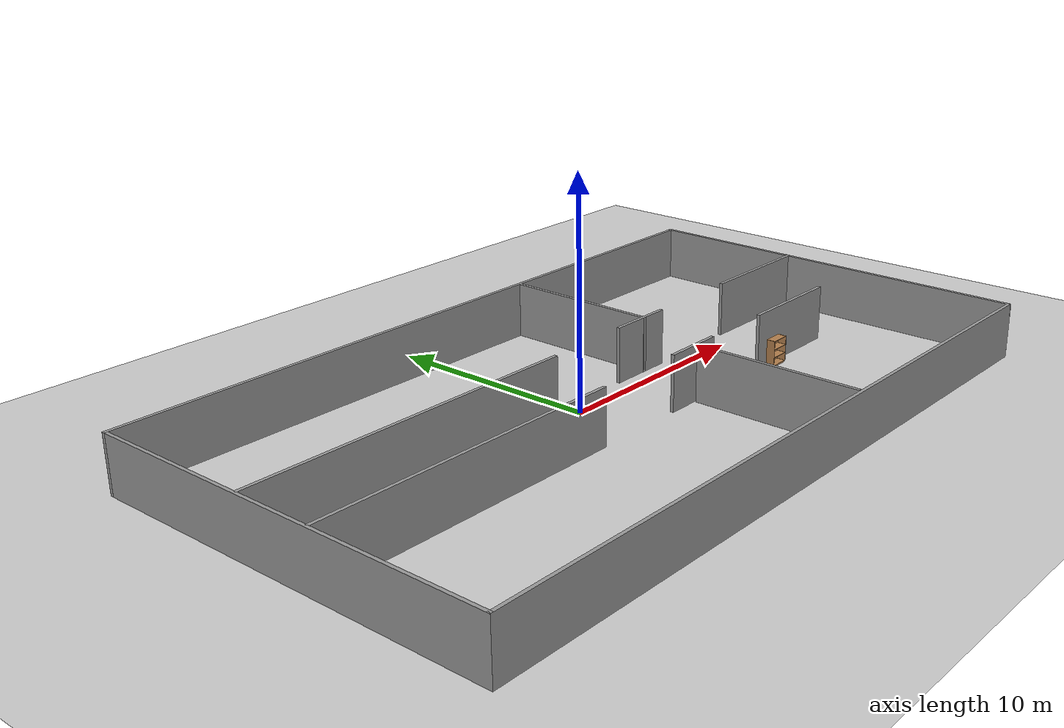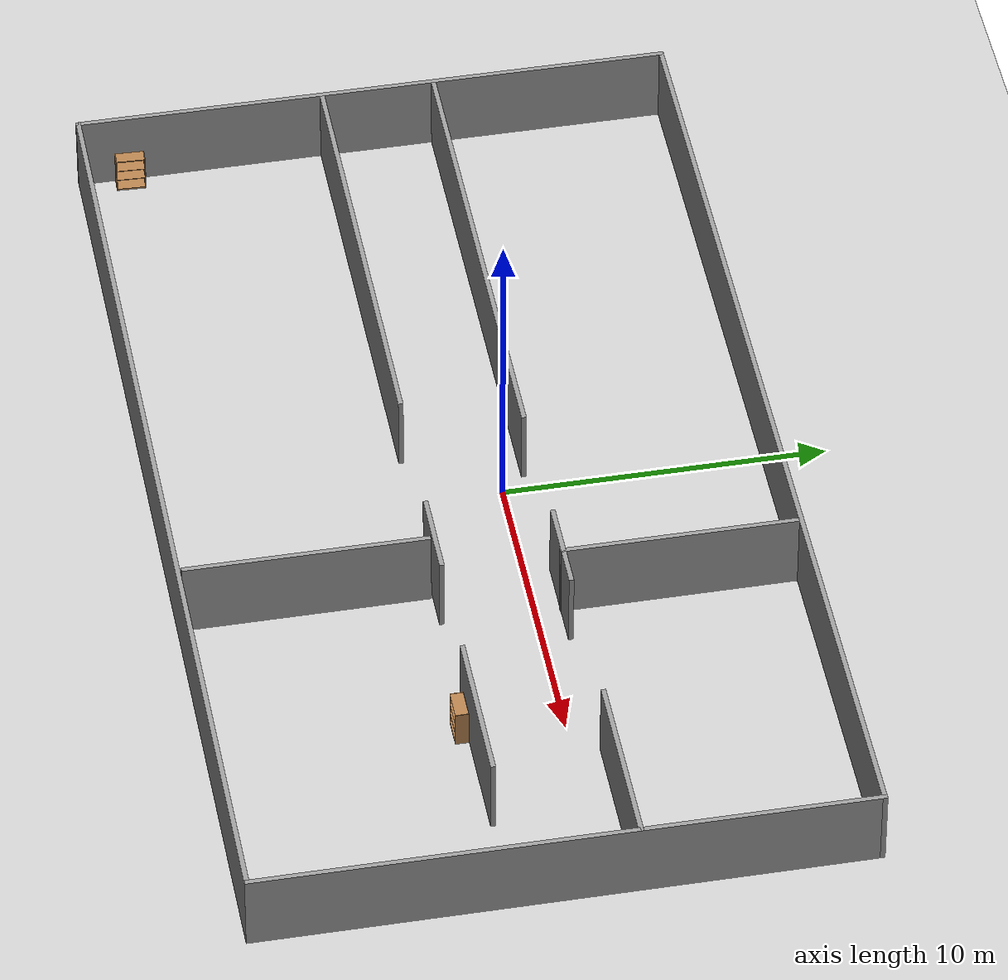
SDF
<sdf version="1.6">
 <world name="default">
  <light name="sun" type="directional">
   <pose>0 0 10 0 -0 0</pose>
   <diffuse>0.8 0.8 0.8 1</diffuse>
   <specular>0.1 0.1 0.1 1</specular>
   <attenuation>
    <range>1000</range>
    <constant>0.9</constant>
    <linear>0.01</linear>
    <quadratic>0.001</quadratic>
   </attenuation>
   <direction>-0.5 0.5 -1</direction>
  </light>
  <model name="ground_plane">
   <static>1</static>
   <link name="link">
    <collision name="collision">
     <geometry><plane><normal>0 0 1</normal><size>100 100</size></plane></geometry>
     <surface><friction><ode><mu>100</mu><mu2>50</mu2></ode></friction></surface>
    </collision>
    <visual name="visual">
     <cast_shadows>0</cast_shadows>
     <geometry><plane><normal>0 0 1</normal><size>100 100</size></plane></geometry>
     <material>
      <script><uri>file://media/materials/scripts/gazebo.material</uri><name>Gazebo/Grey</name></script>
     </material>
    </visual>
   </link>
  </model>
  <gravity>0 0 -9.8</gravity>
  <magnetic_field>6e-06 2.3e-05 -4.2e-05</magnetic_field>
  <atmosphere type="adiabatic"/>
  <physics name="default_physics" default="0" type="ode">
   <max_step_size>0.001</max_step_size>
   <real_time_factor>1</real_time_factor>
   <real_time_update_rate>1000</real_time_update_rate>
  </physics>
  <scene><ambient>0.4 0.4 0.4 1</ambient><background>0.7 0.7 0.7 1</background><shadows>1</shadows></scene>
  <spherical_coordinates>
   <surface_model>EARTH_WGS84</surface_model>
   <latitude_deg>0</latitude_deg>
   <longitude_deg>0</longitude_deg>
   <elevation>0</elevation>
   <heading_deg>0</heading_deg>
  </spherical_coordinates>
  <model name="lima-mars">
   <pose>0.317672 -1.23134 0 0 0 -0.002471</pose>
   <link name="Wall_10">
    <collision name="Wall_10_Collision">
     <geometry><box><size>14.25 0.15 2.5</size></box></geometry>
     <pose>0 0 1.25 0 -0 0</pose>
    </collision>
    <visual name="Wall_10_Visual">
     <pose>0 0 1.25 0 -0 0</pose>
     <geometry><box><size>14.25 0.15 2.5</size></box></geometry>
     <material>
      <script><uri>file://media/materials/scripts/gazebo.material</uri><name>Gazebo/Grey</name></script>
      <ambient>1 1 1 1</ambient>
     </material>
    </visual>
    <pose>-9.26946 -1.57024 0 0 -0 0</pose>
   </link>
   <link name="Wall_12">
    <collision name="Wall_12_Collision">
     <geometry><box><size>2.75 0.15 2.5</size></box></geometry>
     <pose>0 0 1.25 0 -0 0</pose>
    </collision>
    <visual name="Wall_12_Visual">
     <pose>0 0 1.25 0 -0 0</pose>
     <geometry><box><size>2.75 0.15 2.5</size></box></geometry>
     <material>
      <script><uri>file://media/materials/scripts/gazebo.material</uri><name>Gazebo/Grey</name></script>
      <ambient>1 1 1 1</ambient>
     </material>
    </visual>
    <pose>3.48457 -1.57024 0 0 -0 0</pose>
   </link>
   <link name="Wall_14">
    <collision name="Wall_14_Collision">
     <geometry><box><size>7.5 0.15 2.5</size></box></geometry>
     <pose>0 0 1.25 0 -0 0</pose>
    </collision>
    <visual name="Wall_14_Visual">
     <pose>0 0 1.25 0 -0 0</pose>
     <geometry><box><size>7.5 0.15 2.5</size></box></geometry>
     <material>
      <script><uri>file://media/materials/scripts/gazebo.material</uri><name>Gazebo/Grey</name></script>
      <ambient>1 1 1 1</ambient>
     </material>
    </visual>
    <pose>3.65729 -5.43811 0 0 0 -1.5708</pose>
   </link>
   <link name="Wall_16">
    <collision name="Wall_16_Collision">
     <geometry><box><size>15.5 0.15 2.5</size></box></geometry>
     <pose>0 0 1.25 0 -0 0</pose>
    </collision>
    <visual name="Wall_16_Visual">
     <pose>0 0 1.25 0 -0 0</pose>
     <geometry><box><size>15.5 0.15 2.5</size></box></geometry>
     <material>
      <script><uri>file://media/materials/scripts/gazebo.material</uri><name>Gazebo/Grey</name></script>
      <ambient>1 1 1 1</ambient>
     </material>
    </visual>
    <pose>-8.64446 1.98282 0 0 -0 0</pose>
   </link>
   <link name="Wall_18">
    <collision name="Wall_18_Collision">
     <geometry><box><size>3 0.15 2.5</size></box></geometry>
     <pose>0 0 1.25 0 -0 0</pose>
    </collision>
    <visual name="Wall_18_Visual">
     <pose>0 0 1.25 0 -0 0</pose>
     <geometry><box><size>3 0.15 2.5</size></box></geometry>
     <material>
      <script><uri>file://media/materials/scripts/gazebo.material</uri><name>Gazebo/Grey</name></script>
      <ambient>1 1 1 1</ambient>
     </material>
    </visual>
    <pose>4.66493 2.08835 0 0 -0 0</pose>
   </link>
   <link name="Wall_21">
    <collision name="Wall_21_Collision">
     <geometry><box><size>7.25 0.15 2.5</size></box></geometry>
     <pose>0 0 1.25 0 -0 0</pose>
    </collision>
    <visual name="Wall_21_Visual">
     <pose>0 0 1.25 0 -0 0</pose>
     <geometry><box><size>7.25 0.15 2.5</size></box></geometry>
     <material>
      <script><uri>file://media/materials/scripts/gazebo.material</uri><name>Gazebo/Grey</name></script>
      <ambient>1 1 1 1</ambient>
     </material>
    </visual>
    <pose>4.8779 5.61925 0 0 -0 1.5708</pose>
   </link>
   <link name="Wall_23">
    <collision name="Wall_23_Collision">
     <geometry><box><size>5 0.15 2.5</size></box></geometry>
     <pose>0 0 1.25 0 -0 0</pose>
    </collision>
    <visual name="Wall_23_Visual">
     <pose>0 0 1.25 0 -0 0</pose>
     <geometry><box><size>5 0.15 2.5</size></box></geometry>
     <material>
      <script><uri>file://media/materials/scripts/gazebo.material</uri><name>Gazebo/Grey</name></script>
      <ambient>1 1 1 1</ambient>
     </material>
    </visual>
    <pose>10.7416 -1.57175 0 0 -0 0</pose>
   </link>
   <link name="Wall_25">
    <collision name="Wall_25_Collision">
     <geometry><box><size>5.75 0.15 2.5</size></box></geometry>
     <pose>0 0 1.25 0 -0 0</pose>
    </collision>
    <visual name="Wall_25_Visual">
     <pose>0 0 1.25 0 -0 0</pose>
     <geometry><box><size>5.75 0.15 2.5</size></box></geometry>
     <material>
      <script><uri>file://media/materials/scripts/gazebo.material</uri><name>Gazebo/Grey</name></script>
      <ambient>1 1 1 1</ambient>
     </material>
    </visual>
    <pose>13.6249 2.15016 0 0 -0 0</pose>
   </link>
   <link name="Wall_5">
    <collision name="Wall_5_Collision">
     <geometry><box><size>18.75 0.15 2.5</size></box></geometry>
     <pose>0 0 1.25 0 -0 0</pose>
    </collision>
    <visual name="Wall_5_Visual">
     <pose>0 0 1.25 0 -0 0</pose>
     <geometry><box><size>18.75 0.15 2.5</size></box></geometry>
     <material>
      <script><uri>file://media/materials/scripts/gazebo.material</uri><name>Gazebo/Grey</name></script>
      <ambient>1 1 1 1</ambient>
     </material>
    </visual>
    <pose>-16.425 0 0 0 0 -1.5708</pose>
   </link>
   <link name="Wall_6">
    <collision name="Wall_6_Collision">
     <geometry><box><size>33 0.15 2.5</size></box></geometry>
     <pose>0 0 1.25 0 -0 0</pose>
    </collision>
    <visual name="Wall_6_Visual">
     <pose>0 0 1.25 0 -0 0</pose>
     <geometry><box><size>33 0.15 2.5</size></box></geometry>
     <material>
      <script><uri>file://media/materials/scripts/gazebo.material</uri><name>Gazebo/Grey</name></script>
      <ambient>1 1 1 1</ambient>
     </material>
    </visual>
    <pose>0 -9.3 0 0 -0 0</pose>
   </link>
   <link name="Wall_7">
    <collision name="Wall_7_Collision">
     <geometry><box><size>18.75 0.15 2.5</size></box></geometry>
     <pose>0 0 1.25 0 -0 0</pose>
    </collision>
    <visual name="Wall_7_Visual">
     <pose>0 0 1.25 0 -0 0</pose>
     <geometry><box><size>18.75 0.15 2.5</size></box></geometry>
     <material>
      <script><uri>file://media/materials/scripts/gazebo.material</uri><name>Gazebo/Grey</name></script>
      <ambient>1 1 1 1</ambient>
     </material>
    </visual>
    <pose>16.425 0 0 0 -0 1.5708</pose>
   </link>
   <link name="Wall_8">
    <collision name="Wall_8_Collision">
     <geometry><box><size>33 0.15 2.5</size></box></geometry>
     <pose>0 0 1.25 0 -0 0</pose>
    </collision>
    <visual name="Wall_8_Visual">
     <pose>0 0 1.25 0 -0 0</pose>
     <geometry><box><size>33 0.15 2.5</size></box></geometry>
     <material>
      <script><uri>file://media/materials/scripts/gazebo.material</uri><name>Gazebo/Grey</name></script>
      <ambient>1 1 1 1</ambient>
     </material>
    </visual>
    <pose>0 9.3 0 0 -0 3.14159</pose>
   </link>
   <static>1</static>
  </model>
  <model name="bookshelf">
   <static>1</static>
   <link name="link">
    <inertial><mass>1</mass></inertial>
    <collision name="back">
     <pose>0 0.005 0.6 0 -0 0</pose>
     <geometry><box><size>0.9 0.01 1.2</size></box></geometry>
    </collision>
    <visual name="visual1">
     <pose>0 0.005 0.6 0 -0 0</pose>
     <geometry><box><size>0.9 0.01 1.2</size></box></geometry>
     <material>
      <script><uri>file://media/materials/scripts/gazebo.material</uri><name>Gazebo/Wood</name></script>
     </material>
    </visual>
    <collision name="left_side">
     <pose>0.45 -0.195 0.6 0 -0 0</pose>
     <geometry><box><size>0.02 0.4 1.2</size></box></geometry>
    </collision>
    <visual name="visual2">
     <pose>0.45 -0.195 0.6 0 -0 0</pose>
     <geometry><box><size>0.02 0.4 1.2</size></box></geometry>
     <material>
      <script><uri>file://media/materials/scripts/gazebo.material</uri><name>Gazebo/Wood</name></script>
     </material>
    </visual>
    <collision name="right_side">
     <pose>-0.45 -0.195 0.6 0 -0 0</pose>
     <geometry><box><size>0.02 0.4 1.2</size></box></geometry>
    </collision>
    <visual name="visual3">
     <pose>-0.45 -0.195 0.6 0 -0 0</pose>
     <geometry><box><size>0.02 0.4 1.2</size></box></geometry>
     <material>
      <script><uri>file://media/materials/scripts/gazebo.material</uri><name>Gazebo/Wood</name></script>
     </material>
    </visual>
    <collision name="bottom">
     <pose>0 -0.195 0.03 0 -0 0</pose>
     <geometry><box><size>0.88 0.4 0.06</size></box></geometry>
    </collision>
    <visual name="visual4">
     <pose>0 -0.195 0.03 0 -0 0</pose>
     <geometry><box><size>0.88 0.4 0.06</size></box></geometry>
     <material>
      <script><uri>file://media/materials/scripts/gazebo.material</uri><name>Gazebo/Wood</name></script>
     </material>
    </visual>
    <collision name="top">
     <pose>0 -0.195 1.19 0 -0 0</pose>
     <geometry><box><size>0.88 0.4 0.02</size></box></geometry>
    </collision>
    <visual name="visual5">
     <pose>0 -0.195 1.19 0 -0 0</pose>
     <geometry><box><size>0.88 0.4 0.02</size></box></geometry>
     <material>
      <script><uri>file://media/materials/scripts/gazebo.material</uri><name>Gazebo/Wood</name></script>
     </material>
    </visual>
    <collision name="low_shelf">
     <pose>0 -0.195 0.43 0 -0 0</pose>
     <geometry><box><size>0.88 0.4 0.02</size></box></geometry>
    </collision>
    <visual name="visual6">
     <pose>0 -0.195 0.43 0 -0 0</pose>
     <geometry><box><size>0.88 0.4 0.02</size></box></geometry>
     <material>
      <script><uri>file://media/materials/scripts/gazebo.material</uri><name>Gazebo/Wood</name></script>
     </material>
    </visual>
    <collision name="high_shelf">
     <pose>0 -0.195 0.8 0 -0 0</pose>
     <geometry><box><size>0.88 0.4 0.02</size></box></geometry>
    </collision>
    <visual name="visual7">
     <pose>0 -0.195 0.8 0 -0 0</pose>
     <geometry><box><size>0.88 0.4 0.02</size></box></geometry>
     <material>
      <script><uri>file://media/materials/scripts/gazebo.material</uri><name>Gazebo/Wood</name></script>
     </material>
    </visual>
   </link>
   <pose>9.65233 -2.92199 0 0 -0 0</pose>
  </model>
  <model name="bookshelf_0">
   <static>1</static>
   <link name="link">
    <inertial><mass>1</mass></inertial>
    <collision name="back">
     <pose>0 0.005 0.6 0 -0 0</pose>
     <geometry><box><size>0.9 0.01 1.2</size></box></geometry>
    </collision>
    <visual name="visual1">
     <pose>0 0.005 0.6 0 -0 0</pose>
     <geometry><box><size>0.9 0.01 1.2</size></box></geometry>
     <material>
      <script><uri>file://media/materials/scripts/gazebo.material</uri><name>Gazebo/Wood</name></script>
     </material>
    </visual>
    <collision name="left_side">
     <pose>0.45 -0.195 0.6 0 -0 0</pose>
     <geometry><box><size>0.02 0.4 1.2</size></box></geometry>
    </collision>
    <visual name="visual2">
     <pose>0.45 -0.195 0.6 0 -0 0</pose>
     <geometry><box><size>0.02 0.4 1.2</size></box></geometry>
     <material>
      <script><uri>file://media/materials/scripts/gazebo.material</uri><name>Gazebo/Wood</name></script>
     </material>
    </visual>
    <collision name="right_side">
     <pose>-0.45 -0.195 0.6 0 -0 0</pose>
     <geometry><box><size>0.02 0.4 1.2</size></box></geometry>
    </collision>
    <visual name="visual3">
     <pose>-0.45 -0.195 0.6 0 -0 0</pose>
     <geometry><box><size>0.02 0.4 1.2</size></box></geometry>
     <material>
      <script><uri>file://media/materials/scripts/gazebo.material</uri><name>Gazebo/Wood</name></script>
     </material>
    </visual>
    <collision name="bottom">
     <pose>0 -0.195 0.03 0 -0 0</pose>
     <geometry><box><size>0.88 0.4 0.06</size></box></geometry>
    </collision>
    <visual name="visual4">
     <pose>0 -0.195 0.03 0 -0 0</pose>
     <geometry><box><size>0.88 0.4 0.06</size></box></geometry>
     <material>
      <script><uri>file://media/materials/scripts/gazebo.material</uri><name>Gazebo/Wood</name></script>
     </material>
    </visual>
    <collision name="top">
     <pose>0 -0.195 1.19 0 -0 0</pose>
     <geometry><box><size>0.88 0.4 0.02</size></box></geometry>
    </collision>
    <visual name="visual5">
     <pose>0 -0.195 1.19 0 -0 0</pose>
     <geometry><box><size>0.88 0.4 0.02</size></box></geometry>
     <material>
      <script><uri>file://media/materials/scripts/gazebo.material</uri><name>Gazebo/Wood</name></script>
     </material>
    </visual>
    <collision name="low_shelf">
     <pose>0 -0.195 0.43 0 -0 0</pose>
     <geometry><box><size>0.88 0.4 0.02</size></box></geometry>
    </collision>
    <visual name="visual6">
     <pose>0 -0.195 0.43 0 -0 0</pose>
     <geometry><box><size>0.88 0.4 0.02</size></box></geometry>
     <material>
      <script><uri>file://media/materials/scripts/gazebo.material</uri><name>Gazebo/Wood</name></script>
     </material>
    </visual>
    <collision name="high_shelf">
     <pose>0 -0.195 0.8 0 -0 0</pose>
     <geometry><box><size>0.88 0.4 0.02</size></box></geometry>
    </collision>
    <visual name="visual7">
     <pose>0 -0.195 0.8 0 -0 0</pose>
     <geometry><box><size>0.88 0.4 0.02</size></box></geometry>
     <material>
      <script><uri>file://media/materials/scripts/gazebo.material</uri><name>Gazebo/Wood</name></script>
     </material>
    </visual>
   </link>
   <pose>-15.9508 -8.94601 0 0 -0 1.53206</pose>
  </model>
 </world>
</sdf>
